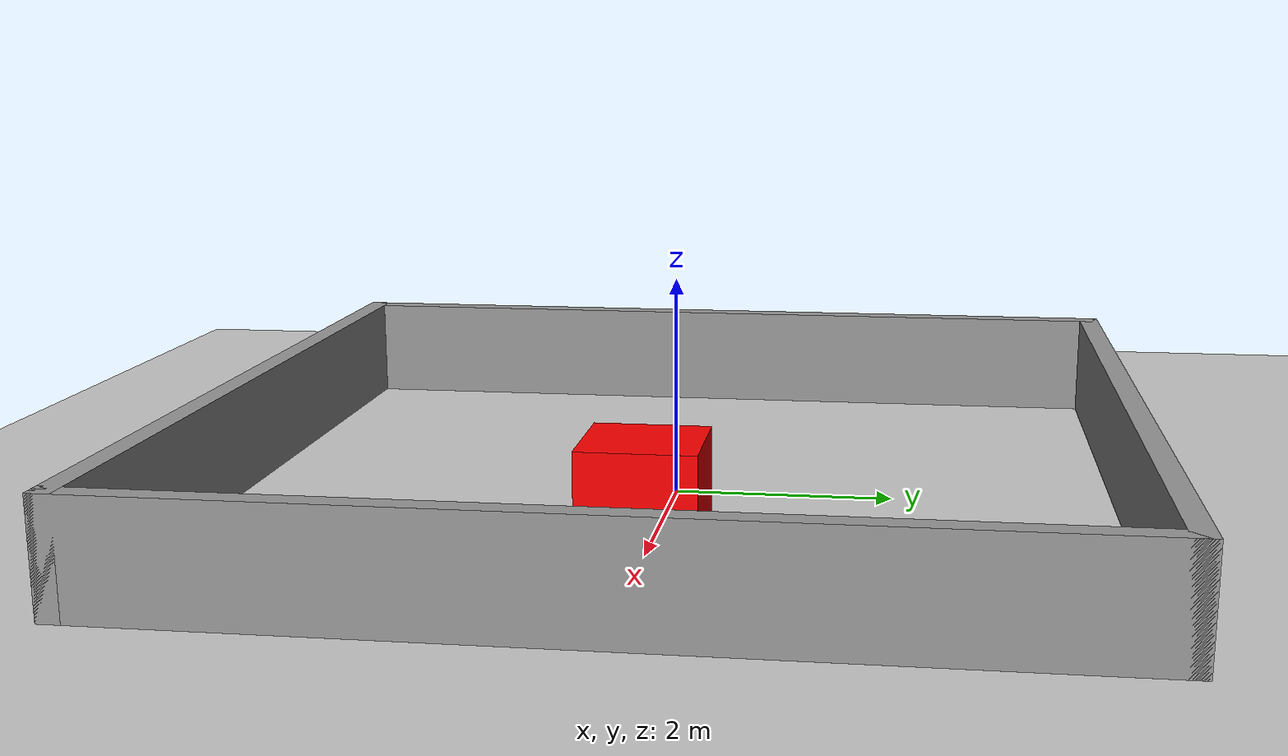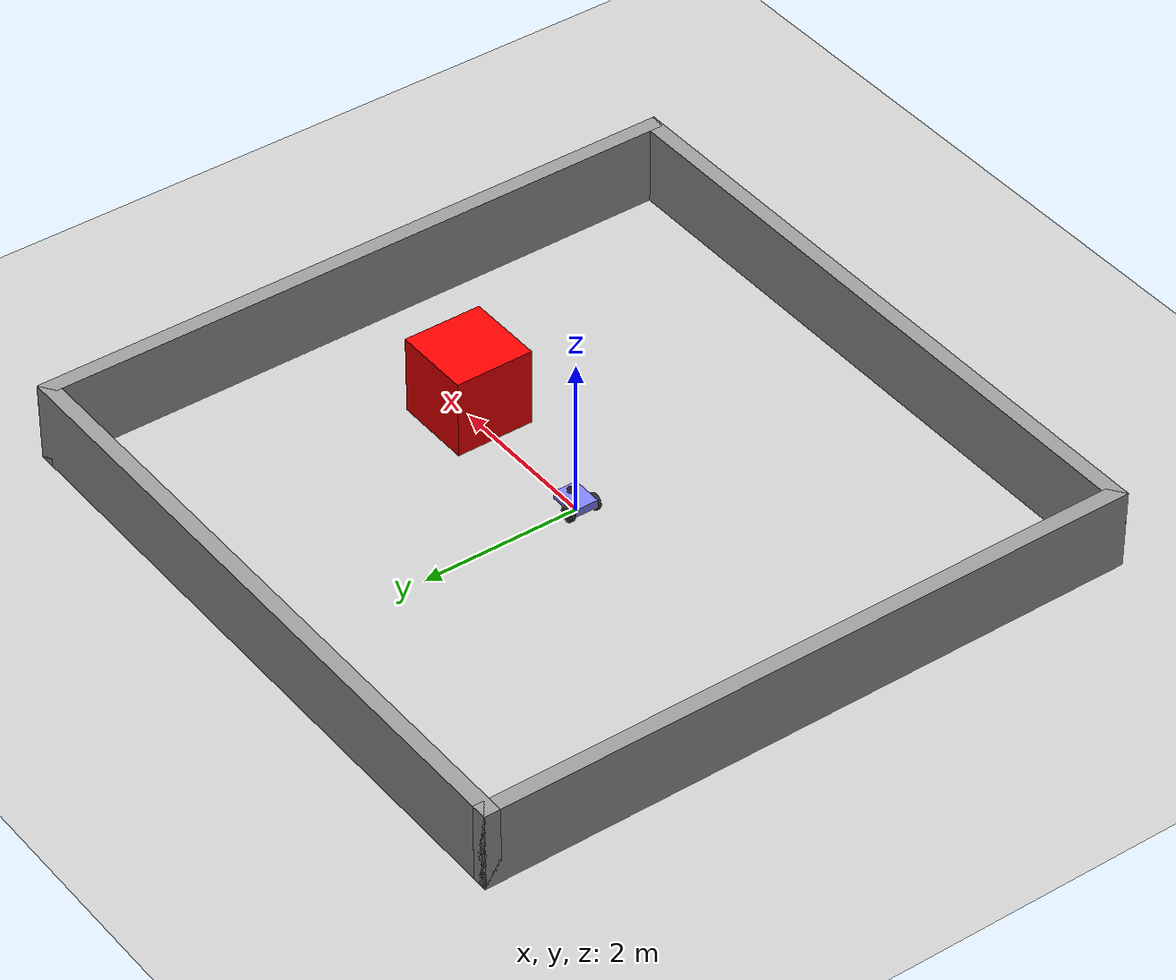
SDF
<?xml version="1.0" ?>
<!--
  Differential-drive robot with a 360-sample GPU lidar.

  Drive it:
    gz topic -t "/cmd_vel" -m gz.msgs.Twist -p "linear: {x: 0.5}, angular: {z: 0.1}"

  Read the lidar:
    gz topic -e -t /scan
-->
<sdf version="1.9">
  <world name="diff_drive_world">

    <physics name="1ms" type="ignored">
      <max_step_size>0.001</max_step_size>
      <real_time_factor>1.0</real_time_factor>
    </physics>

    <plugin
      filename="gz-sim-physics-system"
      name="gz::sim::systems::Physics">
    </plugin>
    <plugin
      filename="gz-sim-sensors-system"
      name="gz::sim::systems::Sensors">
      <render_engine>ogre2</render_engine>
    </plugin>
    <plugin
      filename="gz-sim-scene-broadcaster-system"
      name="gz::sim::systems::SceneBroadcaster">
    </plugin>
    <plugin
      filename="gz-sim-user-commands-system"
      name="gz::sim::systems::UserCommands">
    </plugin>

    <light type="directional" name="sun">
      <cast_shadows>true</cast_shadows>
      <pose>0 0 10 0 0 0</pose>
      <diffuse>1 1 1 1</diffuse>
      <specular>0.5 0.5 0.5 1</specular>
      <attenuation>
        <range>1000</range>
        <constant>0.9</constant>
        <linear>0.01</linear>
        <quadratic>0.001</quadratic>
      </attenuation>
      <direction>-0.5 0.1 -0.9</direction>
    </light>

    <model name="ground_plane">
      <static>true</static>
      <link name="link">
        <collision name="collision">
          <geometry>
            <plane>
              <normal>0 0 1</normal>
              <size>100 100</size>
            </plane>
          </geometry>
        </collision>
        <visual name="visual">
          <geometry>
            <plane>
              <normal>0 0 1</normal>
              <size>100 100</size>
            </plane>
          </geometry>
          <material>
            <ambient>0.8 0.8 0.8 1</ambient>
            <diffuse>0.8 0.8 0.8 1</diffuse>
            <specular>0.8 0.8 0.8 1</specular>
          </material>
        </visual>
      </link>
    </model>

    <!-- A box obstacle so the lidar has something nearby to see -->
    <model name="obstacle">
      <static>true</static>
      <pose>2 0 0.5 0 0 0</pose>
      <link name="link">
        <collision name="collision">
          <geometry>
            <box>
              <size>1 1 1</size>
            </box>
          </geometry>
        </collision>
        <visual name="visual">
          <geometry>
            <box>
              <size>1 1 1</size>
            </box>
          </geometry>
          <material>
            <ambient>1 0 0 1</ambient>
            <diffuse>1 0 0 1</diffuse>
            <specular>1 0 0 1</specular>
          </material>
        </visual>
      </link>
    </model>

    <model name="arena_wall_north">
      <static>true</static>
      <pose>0 4.1 0.5 0 0 0</pose>
      <link name="link">
        <collision name="collision">
          <geometry>
            <box>
              <size>8.4 0.2 1.0</size>
            </box>
          </geometry>
        </collision>
        <visual name="visual">
          <geometry>
            <box>
              <size>8.4 0.2 1.0</size>
            </box>
          </geometry>
          <material>
            <ambient>0.6 0.6 0.6 1</ambient>
            <diffuse>0.6 0.6 0.6 1</diffuse>
          </material>
        </visual>
      </link>
    </model>

    <model name="arena_wall_south">
      <static>true</static>
      <pose>0 -4.1 0.5 0 0 0</pose>
      <link name="link">
        <collision name="collision">
          <geometry>
            <box>
              <size>8.4 0.2 1.0</size>
            </box>
          </geometry>
        </collision>
        <visual name="visual">
          <geometry>
            <box>
              <size>8.4 0.2 1.0</size>
            </box>
          </geometry>
          <material>
            <ambient>0.6 0.6 0.6 1</ambient>
            <diffuse>0.6 0.6 0.6 1</diffuse>
          </material>
        </visual>
      </link>
    </model>

    <model name="arena_wall_east">
      <static>true</static>
      <pose>4.1 0 0.5 0 0 0</pose>
      <link name="link">
        <collision name="collision">
          <geometry>
            <box>
              <size>0.2 8.4 1.0</size>
            </box>
          </geometry>
        </collision>
        <visual name="visual">
          <geometry>
            <box>
              <size>0.2 8.4 1.0</size>
            </box>
          </geometry>
          <material>
            <ambient>0.6 0.6 0.6 1</ambient>
            <diffuse>0.6 0.6 0.6 1</diffuse>
          </material>
        </visual>
      </link>
    </model>

    <model name="arena_wall_west">
      <static>true</static>
      <pose>-4.1 0 0.5 0 0 0</pose>
      <link name="link">
        <collision name="collision">
          <geometry>
            <box>
              <size>0.2 8.4 1.0</size>
            </box>
          </geometry>
        </collision>
        <visual name="visual">
          <geometry>
            <box>
              <size>0.2 8.4 1.0</size>
            </box>
          </geometry>
          <material>
            <ambient>0.6 0.6 0.6 1</ambient>
            <diffuse>0.6 0.6 0.6 1</diffuse>
          </material>
        </visual>
      </link>
    </model>

    <model name="diffbot">
      <pose>0 0 0.1 0 0 0</pose>

      <link name="chassis">
        <pose>0 0 0.05 0 0 0</pose>
        <inertial>
          <mass>5</mass>
          <inertia>
            <ixx>0.0625</ixx>
            <ixy>0</ixy>
            <ixz>0</ixz>
            <iyy>0.10625</iyy>
            <iyz>0</iyz>
            <izz>0.15</izz>
          </inertia>
        </inertial>
        <visual name="visual">
          <geometry>
            <box>
              <size>0.4 0.3 0.1</size>
            </box>
          </geometry>
          <material>
            <ambient>0.5 0.5 1.0 1</ambient>
            <diffuse>0.5 0.5 1.0 1</diffuse>
            <specular>0.0 0.0 1.0 1</specular>
          </material>
        </visual>
        <collision name="collision">
          <geometry>
            <box>
              <size>0.4 0.3 0.1</size>
            </box>
          </geometry>
        </collision>
      </link>

      <link name="left_wheel">
        <pose>-0.1 0.175 0 -1.5707 0 0</pose>
        <inertial>
          <mass>0.5</mass>
          <inertia>
            <ixx>0.00052</ixx>
            <ixy>0</ixy>
            <ixz>0</ixz>
            <iyy>0.00052</iyy>
            <iyz>0</iyz>
            <izz>0.001</izz>
          </inertia>
        </inertial>
        <visual name="visual">
          <geometry>
            <cylinder>
              <radius>0.1</radius>
              <length>0.05</length>
            </cylinder>
          </geometry>
          <material>
            <ambient>0.2 0.2 0.2 1</ambient>
            <diffuse>0.2 0.2 0.2 1</diffuse>
            <specular>0.2 0.2 0.2 1</specular>
          </material>
        </visual>
        <collision name="collision">
          <geometry>
            <cylinder>
              <radius>0.1</radius>
              <length>0.05</length>
            </cylinder>
          </geometry>
          <surface>
            <friction>
              <ode>
                <mu>1</mu>
                <mu2>1</mu2>
              </ode>
            </friction>
          </surface>
        </collision>
      </link>

      <link name="right_wheel">
        <pose>-0.1 -0.175 0 -1.5707 0 0</pose>
        <inertial>
          <mass>0.5</mass>
          <inertia>
            <ixx>0.00052</ixx>
            <ixy>0</ixy>
            <ixz>0</ixz>
            <iyy>0.00052</iyy>
            <iyz>0</iyz>
            <izz>0.001</izz>
          </inertia>
        </inertial>
        <visual name="visual">
          <geometry>
            <cylinder>
              <radius>0.1</radius>
              <length>0.05</length>
            </cylinder>
          </geometry>
          <material>
            <ambient>0.2 0.2 0.2 1</ambient>
            <diffuse>0.2 0.2 0.2 1</diffuse>
            <specular>0.2 0.2 0.2 1</specular>
          </material>
        </visual>
        <collision name="collision">
          <geometry>
            <cylinder>
              <radius>0.1</radius>
              <length>0.05</length>
            </cylinder>
          </geometry>
          <surface>
            <friction>
              <ode>
                <mu>1</mu>
                <mu2>1</mu2>
              </ode>
            </friction>
          </surface>
        </collision>
      </link>

      <link name="caster">
        <pose>0.15 0 -0.05 0 0 0</pose>
        <inertial>
          <mass>0.2</mass>
          <inertia>
            <ixx>0.0001</ixx>
            <ixy>0</ixy>
            <ixz>0</ixz>
            <iyy>0.0001</iyy>
            <iyz>0</iyz>
            <izz>0.0001</izz>
          </inertia>
        </inertial>
        <visual name="visual">
          <geometry>
            <sphere>
              <radius>0.05</radius>
            </sphere>
          </geometry>
          <material>
            <ambient>0.2 0.2 0.2 1</ambient>
            <diffuse>0.2 0.2 0.2 1</diffuse>
            <specular>0.2 0.2 0.2 1</specular>
          </material>
        </visual>
        <collision name="collision">
          <geometry>
            <sphere>
              <radius>0.05</radius>
            </sphere>
          </geometry>
          <surface>
            <friction>
              <ode>
                <mu>0</mu>
                <mu2>0</mu2>
              </ode>
            </friction>
          </surface>
        </collision>
      </link>

      <link name="lidar_link">
        <pose>0.1 0 0.11 0 0 0</pose>
        <inertial>
          <mass>0.1</mass>
          <inertia>
            <ixx>0.0001</ixx>
            <ixy>0</ixy>
            <ixz>0</ixz>
            <iyy>0.0001</iyy>
            <iyz>0</iyz>
            <izz>0.0001</izz>
          </inertia>
        </inertial>
        <visual name="visual">
          <geometry>
            <cylinder>
              <radius>0.04</radius>
              <length>0.04</length>
            </cylinder>
          </geometry>
          <material>
            <ambient>0.1 0.1 0.1 1</ambient>
            <diffuse>0.1 0.1 0.1 1</diffuse>
            <specular>0.1 0.1 0.1 1</specular>
          </material>
        </visual>
        <collision name="collision">
          <geometry>
            <cylinder>
              <radius>0.04</radius>
              <length>0.04</length>
            </cylinder>
          </geometry>
        </collision>

        <sensor name="gpu_lidar" type="gpu_lidar">
          <topic>scan</topic>
          <update_rate>10</update_rate>
          <always_on>1</always_on>
          <visualize>false</visualize>
          <lidar>
            <scan>
              <horizontal>
                <samples>360</samples>
                <resolution>1</resolution>
                <min_angle>-3.14159265</min_angle>
                <max_angle>3.14159265</max_angle>
              </horizontal>
              <vertical>
                <samples>1</samples>
                <resolution>1</resolution>
                <min_angle>0</min_angle>
                <max_angle>0</max_angle>
              </vertical>
            </scan>
            <range>
              <min>0.08</min>
              <max>20.0</max>
              <resolution>0.01</resolution>
            </range>
          </lidar>
        </sensor>
      </link>

      <joint name="left_wheel_joint" type="revolute">
        <parent>chassis</parent>
        <child>left_wheel</child>
        <axis>
          <xyz>0 0 1</xyz>
          <limit>
            <lower>-1.79769e+308</lower>
            <upper>1.79769e+308</upper>
          </limit>
        </axis>
      </joint>

      <joint name="right_wheel_joint" type="revolute">
        <parent>chassis</parent>
        <child>right_wheel</child>
        <axis>
          <xyz>0 0 1</xyz>
          <limit>
            <lower>-1.79769e+308</lower>
            <upper>1.79769e+308</upper>
          </limit>
        </axis>
      </joint>

      <joint name="caster_wheel" type="ball">
        <parent>chassis</parent>
        <child>caster</child>
      </joint>

      <joint name="lidar_joint" type="fixed">
        <parent>chassis</parent>
        <child>lidar_link</child>
      </joint>

      <plugin
        filename="gz-sim-diff-drive-system"
        name="gz::sim::systems::DiffDrive">
        <topic>cmd_vel</topic>
        <left_joint>left_wheel_joint</left_joint>
        <right_joint>right_wheel_joint</right_joint>
        <wheel_separation>0.35</wheel_separation>
        <wheel_radius>0.1</wheel_radius>
        <odom_topic>odom</odom_topic>
        <odom_publish_frequency>20</odom_publish_frequency>
        <max_linear_acceleration>2</max_linear_acceleration>
        <min_linear_acceleration>-2</min_linear_acceleration>
        <max_angular_acceleration>4</max_angular_acceleration>
        <min_angular_acceleration>-4</min_angular_acceleration>
        <max_linear_velocity>1</max_linear_velocity>
        <min_linear_velocity>-1</min_linear_velocity>
        <max_angular_velocity>2</max_angular_velocity>
        <min_angular_velocity>-2</min_angular_velocity>
      </plugin>

      <plugin
        filename="gz-sim-joint-state-publisher-system"
        name="gz::sim::systems::JointStatePublisher">
      </plugin>

    </model>

  </world>
</sdf>
